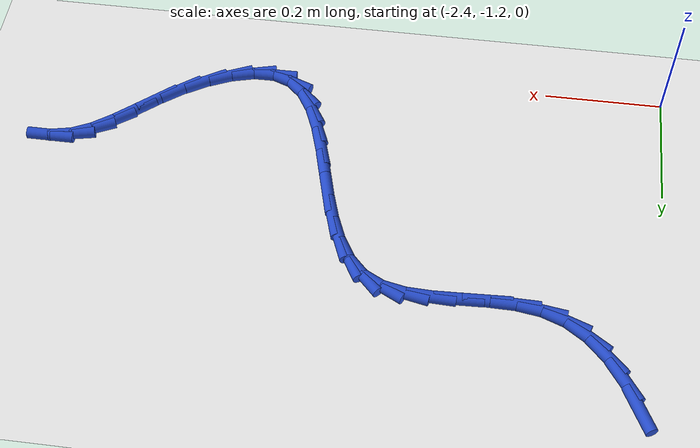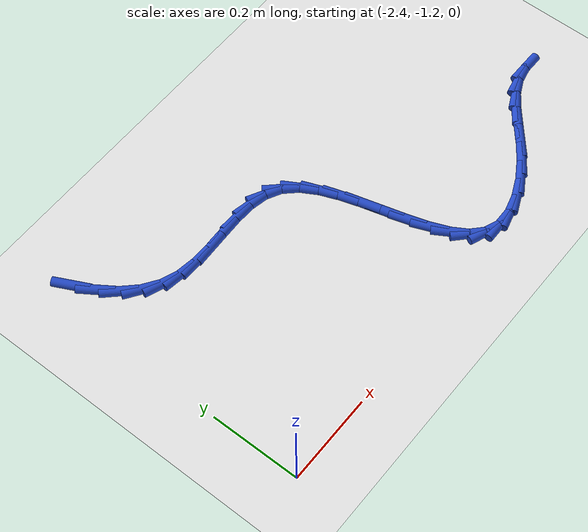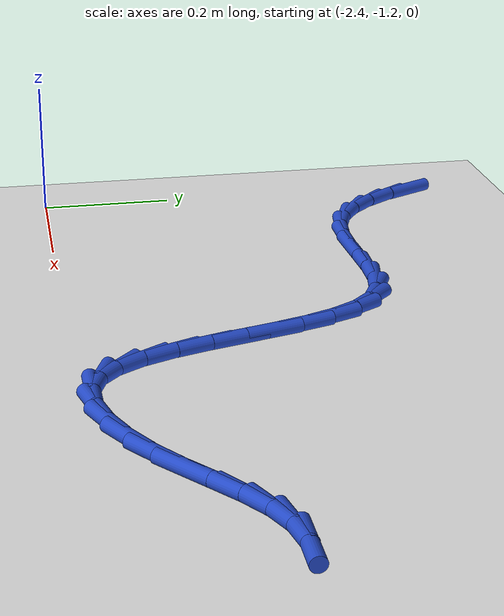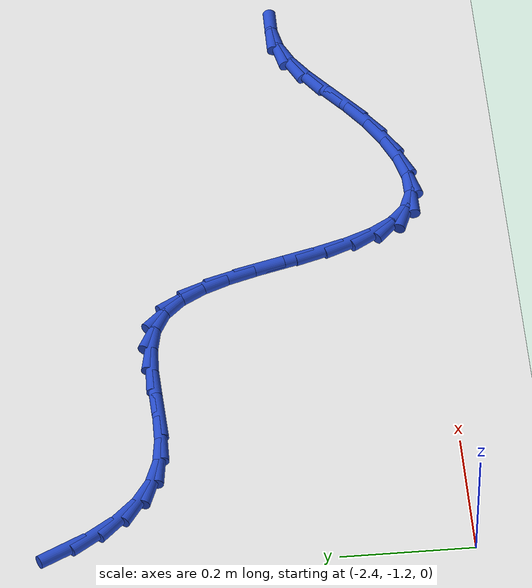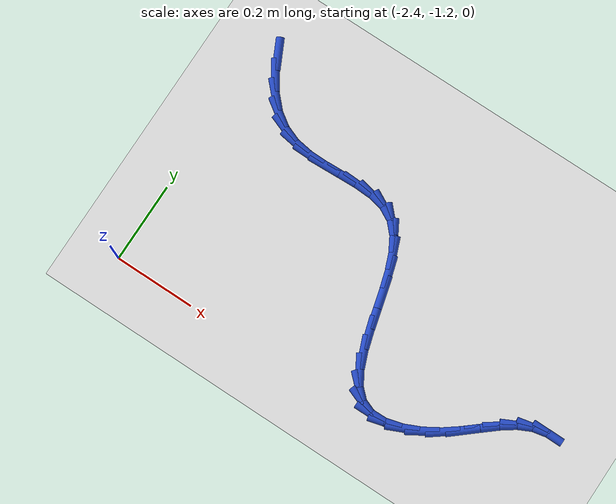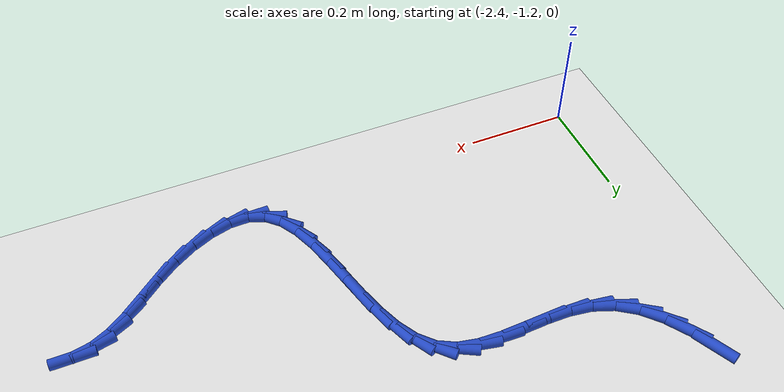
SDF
<sdf version="1.6">
 <world name="default">
  <model name="ground_plane">
   <static>1</static>
   <link name="link">
    <collision name="collision">
     <geometry><plane><normal>0 0 1</normal><size>100 100</size></plane></geometry>
     <surface><friction><ode><mu>100</mu><mu2>50</mu2></ode></friction></surface>
    </collision>
    <visual name="visual">
     <cast_shadows>0</cast_shadows>
     <geometry><plane><normal>0 0 1</normal><size>100 100</size></plane></geometry>
     <material>
      <script><uri>file://media/materials/scripts/gazebo.material</uri><name>Gazebo/WhiteGlow</name></script>
     </material>
    </visual>
   </link>
  </model>
  <model name="line">
   <link name="link_118">
    <pose>-2.359072569025917 -0.5977698770716094 0.01 0 1.57 -1.111919386773202</pose>
    <collision name="collision">
     <geometry><cylinder><radius>0.01</radius><length>0.08</length></cylinder></geometry>
    </collision>
    <visual name="visual">
     <material>
      <script><name>Gazebo/Blue</name><uri>file://media/materials/scripts/gazebo.material</uri></script>
     </material>
     <geometry><cylinder><radius>0.01</radius><length>0.08</length></cylinder></geometry>
    </visual>
   </link>
   <link name="link_119">
    <pose>-2.3368890478083344 -0.6426711722282215 0.01 0 1.57 -0.977505611460617</pose>
    <collision name="collision">
     <geometry><cylinder><radius>0.01</radius><length>0.08</length></cylinder></geometry>
    </collision>
    <visual name="visual">
     <material>
      <script><name>Gazebo/Blue</name><uri>file://media/materials/scripts/gazebo.material</uri></script>
     </material>
     <geometry><cylinder><radius>0.01</radius><length>0.08</length></cylinder></geometry>
    </visual>
   </link>
   <link name="link_120">
    <pose>-2.310935534029905 -0.6811589025580536 0.01 0 1.57 -0.8086346873195961</pose>
    <collision name="collision">
     <geometry><cylinder><radius>0.01</radius><length>0.08</length></cylinder></geometry>
    </collision>
    <visual name="visual">
     <material>
      <script><name>Gazebo/Blue</name><uri>file://media/materials/scripts/gazebo.material</uri></script>
     </material>
     <geometry><cylinder><radius>0.01</radius><length>0.08</length></cylinder></geometry>
    </visual>
   </link>
   <link name="link_121">
    <pose>-2.2810799057737605 -0.7124352818849184 0.01 0 1.57 -0.601645087081714</pose>
    <collision name="collision">
     <geometry><cylinder><radius>0.01</radius><length>0.08</length></cylinder></geometry>
    </collision>
    <visual name="visual">
     <material>
      <script><name>Gazebo/Blue</name><uri>file://media/materials/scripts/gazebo.material</uri></script>
     </material>
     <geometry><cylinder><radius>0.01</radius><length>0.08</length></cylinder></geometry>
    </visual>
   </link>
   <link name="link_122">
    <pose>-2.2471900411230292 -0.7357025240326274 0.01 0 1.57 -0.363648281632743</pose>
    <collision name="collision">
     <geometry><cylinder><radius>0.01</radius><length>0.08</length></cylinder></geometry>
    </collision>
    <visual name="visual">
     <material>
      <script><name>Gazebo/Blue</name><uri>file://media/materials/scripts/gazebo.material</uri></script>
     </material>
     <geometry><cylinder><radius>0.01</radius><length>0.08</length></cylinder></geometry>
    </visual>
   </link>
   <link name="link_123">
    <pose>-2.2091426459617014 -0.7501823644446317 0.01 0 1.57 -0.1486185872531581</pose>
    <collision name="collision">
     <geometry><cylinder><radius>0.01</radius><length>0.08</length></cylinder></geometry>
    </collision>
    <visual name="visual">
     <material>
      <script><name>Gazebo/Blue</name><uri>file://media/materials/scripts/gazebo.material</uri></script>
     </material>
     <geometry><cylinder><radius>0.01</radius><length>0.08</length></cylinder></geometry>
    </visual>
   </link>
   <link name="link_124">
    <pose>-2.167417244068215 -0.756429597820723 0.01 0 1.57 -0.016711869632493284</pose>
    <collision name="collision">
     <geometry><cylinder><radius>0.01</radius><length>0.08</length></cylinder></geometry>
    </collision>
    <visual name="visual">
     <material>
      <script><name>Gazebo/Blue</name><uri>file://media/materials/scripts/gazebo.material</uri></script>
     </material>
     <geometry><cylinder><radius>0.01</radius><length>0.08</length></cylinder></geometry>
    </visual>
   </link>
   <link name="link_125">
    <pose>-2.1234724076007483 -0.7571640665758189 0.01 0 1.57 0.04166863586626726</pose>
    <collision name="collision">
     <geometry><cylinder><radius>0.01</radius><length>0.08</length></cylinder></geometry>
    </collision>
    <visual name="visual">
     <material>
      <script><name>Gazebo/Blue</name><uri>file://media/materials/scripts/gazebo.material</uri></script>
     </material>
     <geometry><cylinder><radius>0.01</radius><length>0.08</length></cylinder></geometry>
    </visual>
   </link>
   <link name="link_126">
    <pose>-2.0788563756112604 -0.7553039006737634 0.01 0 1.57 0.03511829776764823</pose>
    <collision name="collision">
     <geometry><cylinder><radius>0.01</radius><length>0.08</length></cylinder></geometry>
    </collision>
    <visual name="visual">
     <material>
      <script><name>Gazebo/Blue</name><uri>file://media/materials/scripts/gazebo.material</uri></script>
     </material>
     <geometry><cylinder><radius>0.01</radius><length>0.08</length></cylinder></geometry>
    </visual>
   </link>
   <link name="link_127">
    <pose>-2.035117387151708 -0.7537672300784013 0.01 0 1.57 -0.041245096034063976</pose>
    <collision name="collision">
     <geometry><cylinder><radius>0.01</radius><length>0.08</length></cylinder></geometry>
    </collision>
    <visual name="visual">
     <material>
      <script><name>Gazebo/Blue</name><uri>file://media/materials/scripts/gazebo.material</uri></script>
     </material>
     <geometry><cylinder><radius>0.01</radius><length>0.08</length></cylinder></geometry>
    </visual>
   </link>
   <link name="link_128">
    <pose>-1.9938036812740498 -0.7554721847535762 0.01 0 1.57 -0.20758901794980186</pose>
    <collision name="collision">
     <geometry><cylinder><radius>0.01</radius><length>0.08</length></cylinder></geometry>
    </collision>
    <visual name="visual">
     <material>
      <script><name>Gazebo/Blue</name><uri>file://media/materials/scripts/gazebo.material</uri></script>
     </material>
     <geometry><cylinder><radius>0.01</radius><length>0.08</length></cylinder></geometry>
    </visual>
   </link>
   <link name="link_129">
    <pose>-1.9564634970302435 -0.7633368946631329 0.01 0 1.57 -0.488895988910099</pose>
    <collision name="collision">
     <geometry><cylinder><radius>0.01</radius><length>0.08</length></cylinder></geometry>
    </collision>
    <visual name="visual">
     <material>
      <script><name>Gazebo/Blue</name><uri>file://media/materials/scripts/gazebo.material</uri></script>
     </material>
     <geometry><cylinder><radius>0.01</radius><length>0.08</length></cylinder></geometry>
    </visual>
   </link>
   <link name="link_130">
    <pose>-1.924638274900245 -0.7802669859324844 0.01 0 1.57 -0.816668412886647</pose>
    <collision name="collision">
     <geometry><cylinder><radius>0.01</radius><length>0.08</length></cylinder></geometry>
    </collision>
    <visual name="visual">
     <material>
      <script><name>Gazebo/Blue</name><uri>file://media/materials/scripts/gazebo.material</uri></script>
     </material>
     <geometry><cylinder><radius>0.01</radius><length>0.08</length></cylinder></geometry>
    </visual>
   </link>
   <link name="link_131">
    <pose>-1.8989972491182263 -0.8075639351724675 0.01 0 1.57 -1.050555125465337</pose>
    <collision name="collision">
     <geometry><cylinder><radius>0.01</radius><length>0.08</length></cylinder></geometry>
    </collision>
    <visual name="visual">
     <material>
      <script><name>Gazebo/Blue</name><uri>file://media/materials/scripts/gazebo.material</uri></script>
     </material>
     <geometry><cylinder><radius>0.01</radius><length>0.08</length></cylinder></geometry>
    </visual>
   </link>
   <link name="link_132">
    <pose>-1.8784883562404064 -0.8433634324063221 0.01 0 1.57 -1.1943190580788237</pose>
    <collision name="collision">
     <geometry><cylinder><radius>0.01</radius><length>0.08</length></cylinder></geometry>
    </collision>
    <visual name="visual">
     <material>
      <script><name>Gazebo/Blue</name><uri>file://media/materials/scripts/gazebo.material</uri></script>
     </material>
     <geometry><cylinder><radius>0.01</radius><length>0.08</length></cylinder></geometry>
    </visual>
   </link>
   <link name="link_133">
    <pose>-1.861857896388346 -0.8854303207499823 0.01 0 1.57 -1.2758407992186327</pose>
    <collision name="collision">
     <geometry><cylinder><radius>0.01</radius><length>0.08</length></cylinder></geometry>
    </collision>
    <visual name="visual">
     <material>
      <script><name>Gazebo/Blue</name><uri>file://media/materials/scripts/gazebo.material</uri></script>
     </material>
     <geometry><cylinder><radius>0.01</radius><length>0.08</length></cylinder></geometry>
    </visual>
   </link>
   <link name="link_134">
    <pose>-1.847852169683603 -0.9315294433193816 0.01 0 1.57 -1.3128785151260587</pose>
    <collision name="collision">
     <geometry><cylinder><radius>0.01</radius><length>0.08</length></cylinder></geometry>
    </collision>
    <visual name="visual">
     <material>
      <script><name>Gazebo/Blue</name><uri>file://media/materials/scripts/gazebo.material</uri></script>
     </material>
     <geometry><cylinder><radius>0.01</radius><length>0.08</length></cylinder></geometry>
    </visual>
   </link>
   <link name="link_135">
    <pose>-1.835217476247737 -0.9794256432304537 0.01 0 1.57 -1.3129134041626231</pose>
    <collision name="collision">
     <geometry><cylinder><radius>0.01</radius><length>0.08</length></cylinder></geometry>
    </collision>
    <visual name="visual">
     <material>
      <script><name>Gazebo/Blue</name><uri>file://media/materials/scripts/gazebo.material</uri></script>
     </material>
     <geometry><cylinder><radius>0.01</radius><length>0.08</length></cylinder></geometry>
    </visual>
   </link>
   <link name="link_136">
    <pose>-1.8227001162023058 -1.0268837635991317 0.01 0 1.57 -1.2748744049310026</pose>
    <collision name="collision">
     <geometry><cylinder><radius>0.01</radius><length>0.08</length></cylinder></geometry>
    </collision>
    <visual name="visual">
     <material>
      <script><name>Gazebo/Blue</name><uri>file://media/materials/scripts/gazebo.material</uri></script>
     </material>
     <geometry><cylinder><radius>0.01</radius><length>0.08</length></cylinder></geometry>
    </visual>
   </link>
   <link name="link_137">
    <pose>-1.8090463896688698 -1.0716686475413495 0.01 0 1.57 -1.1882768053092203</pose>
    <collision name="collision">
     <geometry><cylinder><radius>0.01</radius><length>0.08</length></cylinder></geometry>
    </collision>
    <visual name="visual">
     <material>
      <script><name>Gazebo/Blue</name><uri>file://media/materials/scripts/gazebo.material</uri></script>
     </material>
     <geometry><cylinder><radius>0.01</radius><length>0.08</length></cylinder></geometry>
    </visual>
   </link>
   <link name="link_138">
    <pose>-1.7930025967689884 -1.111545138173041 0.01 0 1.57 -1.0293038811089141</pose>
    <collision name="collision">
     <geometry><cylinder><radius>0.01</radius><length>0.08</length></cylinder></geometry>
    </collision>
    <visual name="visual">
     <material>
      <script><name>Gazebo/Blue</name><uri>file://media/materials/scripts/gazebo.material</uri></script>
     </material>
     <geometry><cylinder><radius>0.01</radius><length>0.08</length></cylinder></geometry>
    </visual>
   </link>
   <link name="link_139">
    <pose>-1.7733150376242195 -1.1442780786101392 0.01 0 1.57 -0.7597298150575649</pose>
    <collision name="collision">
     <geometry><cylinder><radius>0.01</radius><length>0.08</length></cylinder></geometry>
    </collision>
    <visual name="visual">
     <material>
      <script><name>Gazebo/Blue</name><uri>file://media/materials/scripts/gazebo.material</uri></script>
     </material>
     <geometry><cylinder><radius>0.01</radius><length>0.08</length></cylinder></geometry>
    </visual>
   </link>
   <link name="link_140">
    <pose>-1.7487300123561218 -1.1676323119685774 0.01 0 1.57 -0.3655771017948276</pose>
    <collision name="collision">
     <geometry><cylinder><radius>0.01</radius><length>0.08</length></cylinder></geometry>
    </collision>
    <visual name="visual">
     <material>
      <script><name>Gazebo/Blue</name><uri>file://media/materials/scripts/gazebo.material</uri></script>
     </material>
     <geometry><cylinder><radius>0.01</radius><length>0.08</length></cylinder></geometry>
    </visual>
   </link>
   <link name="link_141">
    <pose>-1.718009802305138 -1.1793915037364144 0.01 0 1.57 0.01359165264474684</pose>
    <collision name="collision">
     <geometry><cylinder><radius>0.01</radius><length>0.08</length></cylinder></geometry>
    </collision>
    <visual name="visual">
     <material>
      <script><name>Gazebo/Blue</name><uri>file://media/materials/scripts/gazebo.material</uri></script>
     </material>
     <geometry><cylinder><radius>0.01</radius><length>0.08</length></cylinder></geometry>
    </visual>
   </link>
   <link name="link_142">
    <pose>-1.6812346921987695 -1.1788916384329546 0.01 0 1.57 0.25931597860974104</pose>
    <collision name="collision">
     <geometry><cylinder><radius>0.01</radius><length>0.08</length></cylinder></geometry>
    </collision>
    <visual name="visual">
     <material>
      <script><name>Gazebo/Blue</name><uri>file://media/materials/scripts/gazebo.material</uri></script>
     </material>
     <geometry><cylinder><radius>0.01</radius><length>0.08</length></cylinder></geometry>
    </visual>
   </link>
   <link name="link_143">
    <pose>-1.6407665171730559 -1.168155866752249 0.01 0 1.57 0.4223244018271897</pose>
    <collision name="collision">
     <geometry><cylinder><radius>0.01</radius><length>0.08</length></cylinder></geometry>
    </collision>
    <visual name="visual">
     <material>
      <script><name>Gazebo/Blue</name><uri>file://media/materials/scripts/gazebo.material</uri></script>
     </material>
     <geometry><cylinder><radius>0.01</radius><length>0.08</length></cylinder></geometry>
    </visual>
   </link>
   <link name="link_144">
    <pose>-1.5991941865193744 -1.1494747829596603 0.01 0 1.57 0.5455988345398635</pose>
    <collision name="collision">
     <geometry><cylinder><radius>0.01</radius><length>0.08</length></cylinder></geometry>
    </collision>
    <visual name="visual">
     <material>
      <script><name>Gazebo/Blue</name><uri>file://media/materials/scripts/gazebo.material</uri></script>
     </material>
     <geometry><cylinder><radius>0.01</radius><length>0.08</length></cylinder></geometry>
    </visual>
   </link>
   <link name="link_145">
    <pose>-1.5591066095291037 -1.1251389813205521 0.01 0 1.57 0.6483866224421772</pose>
    <collision name="collision">
     <geometry><cylinder><radius>0.01</radius><length>0.08</length></cylinder></geometry>
    </collision>
    <visual name="visual">
     <material>
      <script><name>Gazebo/Blue</name><uri>file://media/materials/scripts/gazebo.material</uri></script>
     </material>
     <geometry><cylinder><radius>0.01</radius><length>0.08</length></cylinder></geometry>
    </visual>
   </link>
   <link name="link_146">
    <pose>-1.5225867972645963 -1.0974693164607385 0.01 0 1.57 0.7054250130035297</pose>
    <collision name="collision">
     <geometry><cylinder><radius>0.01</radius><length>0.08</length></cylinder></geometry>
    </collision>
    <visual name="visual">
     <material>
      <script><name>Gazebo/Blue</name><uri>file://media/materials/scripts/gazebo.material</uri></script>
     </material>
     <geometry><cylinder><radius>0.01</radius><length>0.08</length></cylinder></geometry>
    </visual>
   </link>
   <link name="link_147">
    <pose>-1.4890905932333698 -1.0689437873339096 0.01 0 1.57 0.7002094330319464</pose>
    <collision name="collision">
     <geometry><cylinder><radius>0.01</radius><length>0.08</length></cylinder></geometry>
    </collision>
    <visual name="visual">
     <material>
      <script><name>Gazebo/Blue</name><uri>file://media/materials/scripts/gazebo.material</uri></script>
     </material>
     <geometry><cylinder><radius>0.01</radius><length>0.08</length></cylinder></geometry>
    </visual>
   </link>
   <link name="link_148">
    <pose>-1.4572236795846691 -1.042091245392672 0.01 0 1.57 0.6214233771645811</pose>
    <collision name="collision">
     <geometry><cylinder><radius>0.01</radius><length>0.08</length></cylinder></geometry>
    </collision>
    <visual name="visual">
     <material>
      <script><name>Gazebo/Blue</name><uri>file://media/materials/scripts/gazebo.material</uri></script>
     </material>
     <geometry><cylinder><radius>0.01</radius><length>0.08</length></cylinder></geometry>
    </visual>
   </link>
   <link name="link_149">
    <pose>-1.4255913067302308 -1.01944056791406 0.01 0 1.57 0.45196125012230964</pose>
    <collision name="collision">
     <geometry><cylinder><radius>0.01</radius><length>0.08</length></cylinder></geometry>
    </collision>
    <visual name="visual">
     <material>
      <script><name>Gazebo/Blue</name><uri>file://media/materials/scripts/gazebo.material</uri></script>
     </material>
     <geometry><cylinder><radius>0.01</radius><length>0.08</length></cylinder></geometry>
    </visual>
   </link>
   <link name="link_150">
    <pose>-1.392798753796562 -1.0035205621216516 0.01 0 1.57 0.20915738006644327</pose>
    <collision name="collision">
     <geometry><cylinder><radius>0.01</radius><length>0.08</length></cylinder></geometry>
    </collision>
    <visual name="visual">
     <material>
      <script><name>Gazebo/Blue</name><uri>file://media/materials/scripts/gazebo.material</uri></script>
     </material>
     <geometry><cylinder><radius>0.01</radius><length>0.08</length></cylinder></geometry>
    </visual>
   </link>
   <link name="link_151">
    <pose>-1.3577689536917381 -0.9960850771149866 0.01 0 1.57 -0.002945047113056512</pose>
    <collision name="collision">
     <geometry><cylinder><radius>0.01</radius><length>0.08</length></cylinder></geometry>
    </collision>
    <visual name="visual">
     <material>
      <script><name>Gazebo/Blue</name><uri>file://media/materials/scripts/gazebo.material</uri></script>
     </material>
     <geometry><cylinder><radius>0.01</radius><length>0.08</length></cylinder></geometry>
    </visual>
   </link>
  </model>
 </world>
</sdf>
